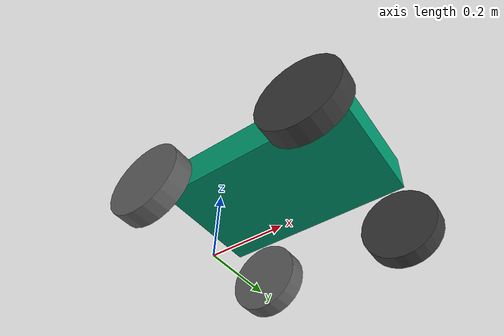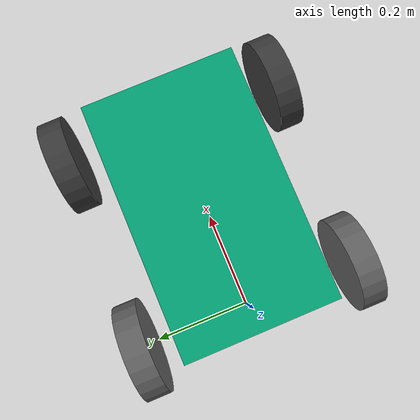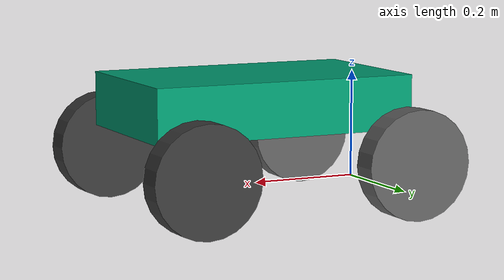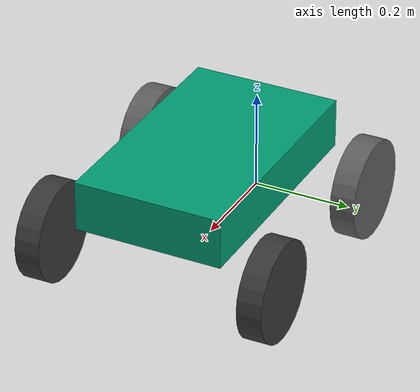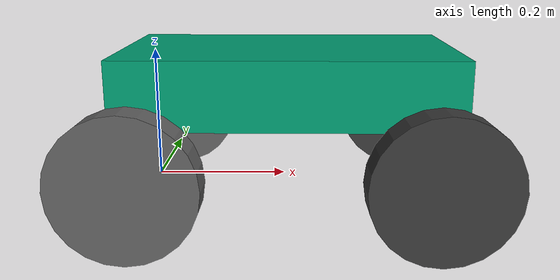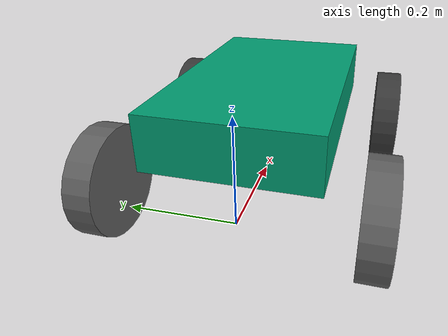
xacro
<?xml version="1.0"?>
<robot xmlns:xacro="http://www.ros.org/wiki/xacro">

    <xacro:property name="body_mass" value="0.3" />
    <xacro:property name="body_width" value="0.3" />
    <xacro:property name="body_length" value="0.10" />
    <xacro:property name="body_depth" value="0.75" />

    <xacro:property name="wheel_radius" value="0.1" />
    <xacro:property name="wheel_thickness" value="0.05  " />
    <xacro:property name="wheel_mass" value="0.8" />
    <xacro:property name="steering_mass" value="0.01" />

    <!-- BASE -->
    <link name="base_footprint">
            <origin xyz="0 0 0" rpy="0 0 0" />
    </link>

    <link name="base_link">
    </link>
    <joint name="base_joint" type="fixed">
        <parent link="base_footprint" />
        <child link="base_link" />
        <origin xyz="0.0 0.0 0.0" rpy="0 0 0" />
    </joint>

    <link name="chassis_link">
        <inertial>
            <origin xyz="0.0374140021041951 -0.000373005187591258 -0.0771282894414029" rpy="0 0 0" />
            <mass value="24.73" />
            <inertia ixx="${body_mass/12 * (body_width*body_width + body_length*body_length)}"
                ixy="0" ixz="0"
                iyy="${body_mass/12 * (body_length*body_length + body_depth*body_depth)}" iyz="0"
                izz="${body_mass/12 * (body_width*body_width + body_depth*body_depth)}" />
        </inertial>
        <visual>
            <origin xyz="0 0 0" rpy="0 0 0" />
            <geometry>
                <box size="0.5 0.3 0.10" />
            </geometry>
        </visual>
        <collision>
            <origin xyz="0.07 0 -0.05" rpy="0 0 0" />
            <geometry>
                <box size="0.5 0.3 0.10" />
            </geometry>
        </collision>
    </link>
    <joint name="chassis_joint" type="fixed">
        <parent link="base_link" />
        <child link="chassis_link" />
        <origin xyz="0.2078 0.0 0.1555" rpy="0 0 0" />
    </joint>

    <!-- FRONT LEFT WHEEL -->
    <link name="fr_left_steer_link">
        <inertial>
            <origin xyz="-0.0002776492198312 0.0163539773588368 4.97346169803237E-09" rpy="0 0 0" />
            <mass value="${steering_mass}" />
            <inertia
                ixx="${steering_mass/12*(3*wheel_radius*wheel_radius + wheel_thickness*wheel_thickness)}"
                ixy="0" ixz="0"
                iyy="${steering_mass/12*(3*wheel_radius*wheel_radius + wheel_thickness*wheel_thickness)}"
                iyz="0" izz="${steering_mass/2 * wheel_radius*wheel_radius}" />
        </inertial>
    </link>

    <joint name="fr_left_steer_joint" type="revolute">
        <origin xyz="0.2 0.23 -0.1" rpy="0 0 0" />
        <parent link="chassis_link" />
        <child link="fr_left_steer_link" />
        <axis xyz="0 0 1" />
        <limit upper="0.6" lower="-0.6" effort="-1.0" velocity="-1.0" />
    </joint>

    <link name="fr_left_wheel_link">
        <inertial>
            <origin xyz="-3.5837499634539E-10 4.97346158701006E-09 -0.016356334080185" rpy="0 0 0" />
            <mass value="${wheel_mass}" />
            <inertia
                ixx="${wheel_mass/12*(3*wheel_radius*wheel_radius + wheel_thickness*wheel_thickness)}"
                ixy="0" ixz="0"
                iyy="${wheel_mass/12*(3*wheel_radius*wheel_radius + wheel_thickness*wheel_thickness)}"
                iyz="0" izz="${wheel_mass/2 * wheel_radius*wheel_radius}" />
        </inertial>
        <visual>
            <origin xyz="0 0 0" rpy="0 0 0" />
            <geometry>
                <cylinder radius="${wheel_radius}" length="${wheel_thickness}" />
            </geometry>
            <material name="">
                <color rgba="0.223529411764706 0.223529411764706 0.223529411764706 1" />
            </material>
        </visual>
        <collision>
            <origin xyz="0 0 0" rpy="0 0 0" />
            <geometry>
                <cylinder radius="${wheel_radius}" length="${wheel_thickness}" />
            </geometry>
        </collision>
    </link>

    <joint name="fr_left_wheel_joint" type="continuous">
        <origin xyz="0 0 0" rpy="1.5708 0 0.016976" />
        <parent link="fr_left_steer_link" />
        <child link="fr_left_wheel_link" />
        <axis xyz="0 0 -1" />
        <dynamics friction="0.1" damping="0.2" />
        <limit lower="-3.14159" upper="3.14159" effort="200" velocity="-1" />

    </joint>

    <!-- FRONT RIGHT WHEEL -->
    <link name="fr_right_steer_link">
        <inertial>
            <origin xyz="0.000274981985673328 -0.0163540222836661 -3.24802407192237E-11" rpy="0 0 0" />
            <mass value="${steering_mass}" />
            <inertia
                ixx="${steering_mass/12*(3*wheel_radius*wheel_radius + wheel_thickness*wheel_thickness)}"
                ixy="0" ixz="0"
                iyy="${steering_mass/12*(3*wheel_radius*wheel_radius + wheel_thickness*wheel_thickness)}"
                iyz="0" izz="${steering_mass/2 * wheel_radius*wheel_radius}" />
        </inertial>
    </link>
    <joint name="fr_right_steer_joint" type="revolute">
        <origin xyz="0.2 -0.23 -0.1" rpy="0 0 0" />
        <parent link="chassis_link" />
        <child link="fr_right_steer_link" />
        <axis xyz="0 0 1" />
        <limit upper="0.6" lower="-0.6" effort="-1.0" velocity="-1.0" />
    </joint>
    <link name="fr_right_wheel_link">
        <inertial>
            <origin xyz="0.00027498198567355 3.24801296969213E-11 -0.0163540222836661" rpy="0 0 0" />
            <mass value="${wheel_mass}" />
            <inertia
                ixx="${wheel_mass/12*(3*wheel_radius*wheel_radius + wheel_thickness*wheel_thickness)}"
                ixy="0" ixz="0"
                iyy="${wheel_mass/12*(3*wheel_radius*wheel_radius + wheel_thickness*wheel_thickness)}"
                iyz="0" izz="${wheel_mass/2 * wheel_radius*wheel_radius}" />
        </inertial>
        <visual>
            <origin xyz="0 0 0" rpy="0 0 0" />
            <geometry>
                <cylinder radius="${wheel_radius}" length="${wheel_thickness}" />
            </geometry>
            <material name="">
                <color rgba="0.223529411764706 0.223529411764706 0.223529411764706 1" />
            </material>
        </visual>
        <collision>
            <origin xyz="0 0 0" rpy="0 0 0" />
            <geometry>
                <cylinder radius="${wheel_radius}" length="${wheel_thickness}" />
            </geometry>
        </collision>
    </link>
    <joint name="fr_right_wheel_joint" type="continuous">
        <origin xyz="0 0 0" rpy="-1.5708 0 0.016976" />
        <parent link="fr_right_steer_link" />
        <child link="fr_right_wheel_link" />
        <axis xyz="0 0 1" />
        <dynamics friction="0.1" damping="0.2" />
        <limit lower="-3.14159" upper="3.14159" effort="200" velocity="-1" />

    </joint>

    <!-- REAR LEFT WHEEL -->
    <link name="re_left_wheel_link">
        <inertial>
            <origin xyz="1.245E-09 1.7252E-06 -0.010284" rpy="0 0 0" />
            <mass value="${wheel_mass}" />
            <inertia
                ixx="${wheel_mass/12*(3*wheel_radius*wheel_radius + wheel_thickness*wheel_thickness)}"
                ixy="0" ixz="0"
                iyy="${wheel_mass/12*(3*wheel_radius*wheel_radius + wheel_thickness*wheel_thickness)}"
                iyz="0" izz="${wheel_mass/2 * wheel_radius*wheel_radius}" />
        </inertial>
        <visual>
            <origin xyz="0 0 0" rpy="0 0 0" />
            <geometry>
                <cylinder radius="${wheel_radius}" length="${wheel_thickness}" />
            </geometry>
            <material name="">
                <color rgba="0.37647 0.37647 0.37647 1" />
            </material>
        </visual>
        <collision>
            <origin xyz="0 0 0" rpy="0 0 0" />
            <geometry>
                <cylinder radius="${wheel_radius}" length="${wheel_thickness}" />
            </geometry>
        </collision>
    </link>
    <joint name="re_left_wheel_joint" type="continuous">
        <origin xyz="-0.2078 0.23 -0.1" rpy="1.5708 0 0" />
        <parent link="chassis_link" />
        <child link="re_left_wheel_link" />
        <axis xyz="0 0 -1" />
        <dynamics friction="0.1" damping="0.2" />
        <limit lower="-3.14159" upper="3.14159" effort="70" velocity="-1" />

    </joint>

    <!-- REAR RIGHT WHEEL -->
    <link name="re_right_wheel_link">
        <inertial>
            <origin xyz="0 0 0" rpy="0 0 0" />
            <mass value="${wheel_mass}" />
            <inertia
                ixx="${wheel_mass/12*(3*wheel_radius*wheel_radius + wheel_thickness*wheel_thickness)}"
                ixy="0" ixz="0"
                iyy="${wheel_mass/12*(3*wheel_radius*wheel_radius + wheel_thickness*wheel_thickness)}"
                iyz="0" izz="${wheel_mass/2 * wheel_radius*wheel_radius}" />
        </inertial>
        <visual>
            <origin xyz="0 0 0" rpy="0 0 0" />
            <geometry>
                <cylinder radius="${wheel_radius}" length="${wheel_thickness}" />
            </geometry>
            <material name="">
                <color rgba="0.37647 0.37647 0.37647 1" />
            </material>
        </visual>
        <collision>
            <origin xyz="0 0 0" rpy="0 0 0" />
            <geometry>
                <cylinder radius="${wheel_radius}" length="${wheel_thickness}" />
            </geometry>
        </collision>
    </link>
    <joint name="re_right_wheel_joint" type="continuous">
        <origin xyz="-0.2078 -0.23 -0.1" rpy="-1.5708 0 0" />
        <parent link="chassis_link" />
        <child link="re_right_wheel_link" />
        <axis xyz="0 0 1" />

        <dynamics friction="0.1" damping="0.2" />
        <limit lower="-3.14159" upper="3.14159" effort="70" velocity="-1" />

    </joint>
</robot>
